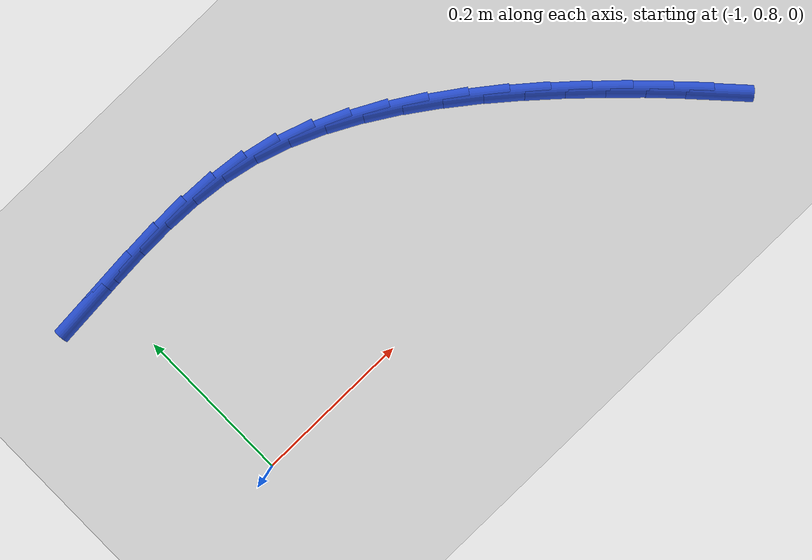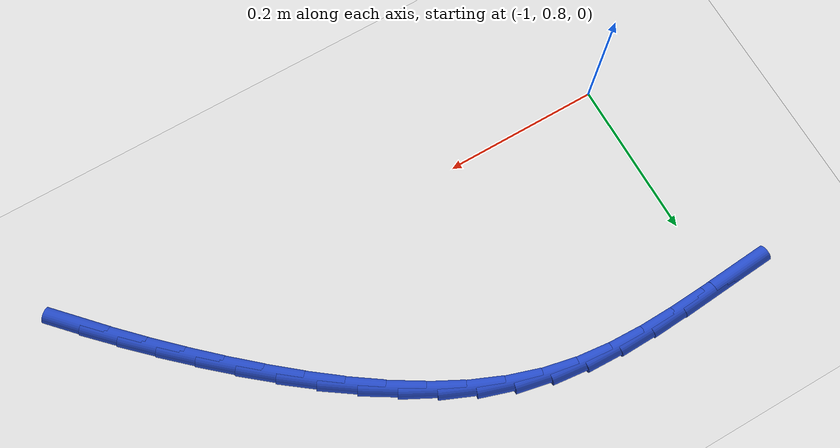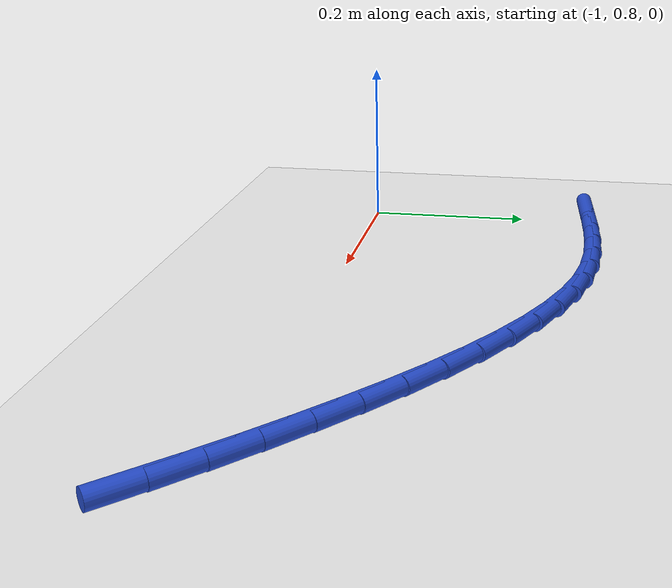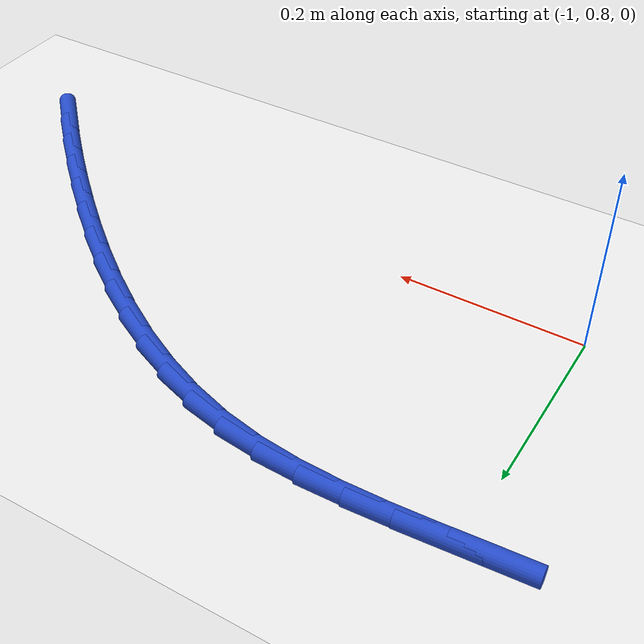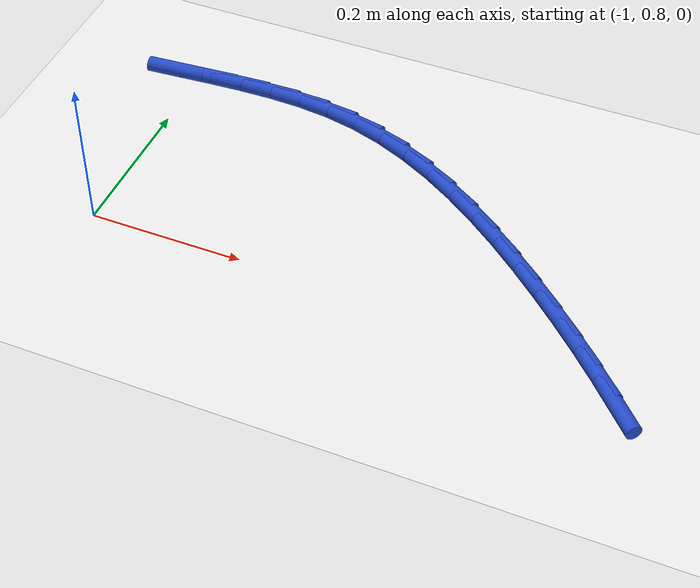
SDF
<sdf version="1.6">
 <world name="default">
  <model name="ground_plane">
   <static>1</static>
   <link name="link">
    <collision name="collision">
     <geometry><plane><normal>0 0 1</normal><size>100 100</size></plane></geometry>
     <surface><friction><ode><mu>100</mu><mu2>50</mu2></ode></friction></surface>
    </collision>
    <visual name="visual">
     <cast_shadows>0</cast_shadows>
     <geometry><plane><normal>0 0 1</normal><size>100 100</size></plane></geometry>
     <material>
      <script><uri>file://media/materials/scripts/gazebo.material</uri><name>Gazebo/WhiteGlow</name></script>
     </material>
    </visual>
   </link>
  </model>
  <model name="line">
   <link name="link_18">
    <pose>-0.3136771158944373 0.7492867287260317 0.01 0 1.57 -0.8182478704940331</pose>
    <collision name="collision">
     <geometry><cylinder><radius>0.01</radius><length>0.08</length></cylinder></geometry>
    </collision>
    <visual name="visual">
     <material>
      <script><name>Gazebo/Blue</name><uri>file://media/materials/scripts/gazebo.material</uri></script>
     </material>
     <geometry><cylinder><radius>0.01</radius><length>0.08</length></cylinder></geometry>
    </visual>
   </link>
   <link name="link_19">
    <pose>-0.3458120315836719 0.7836054112105914 0.01 0 1.57 -0.791452390213166</pose>
    <collision name="collision">
     <geometry><cylinder><radius>0.01</radius><length>0.08</length></cylinder></geometry>
    </collision>
    <visual name="visual">
     <material>
      <script><name>Gazebo/Blue</name><uri>file://media/materials/scripts/gazebo.material</uri></script>
     </material>
     <geometry><cylinder><radius>0.01</radius><length>0.08</length></cylinder></geometry>
    </visual>
   </link>
   <link name="link_20">
    <pose>-0.3790881491728298 0.8172869103513906 0.01 0 1.57 -0.7664967476595134</pose>
    <collision name="collision">
     <geometry><cylinder><radius>0.01</radius><length>0.08</length></cylinder></geometry>
    </collision>
    <visual name="visual">
     <material>
      <script><name>Gazebo/Blue</name><uri>file://media/materials/scripts/gazebo.material</uri></script>
     </material>
     <geometry><cylinder><radius>0.01</radius><length>0.08</length></cylinder></geometry>
    </visual>
   </link>
   <link name="link_21">
    <pose>-0.4134435788887743 0.8503675510492263 0.01 0 1.57 -0.7433139750297793</pose>
    <collision name="collision">
     <geometry><cylinder><radius>0.01</radius><length>0.08</length></cylinder></geometry>
    </collision>
    <visual name="visual">
     <material>
      <script><name>Gazebo/Blue</name><uri>file://media/materials/scripts/gazebo.material</uri></script>
     </material>
     <geometry><cylinder><radius>0.01</radius><length>0.08</length></cylinder></geometry>
    </visual>
   </link>
   <link name="link_22">
    <pose>-0.44881650836748194 0.8828818152418216 0.01 0 1.57 -0.7190530721349292</pose>
    <collision name="collision">
     <geometry><cylinder><radius>0.01</radius><length>0.08</length></cylinder></geometry>
    </collision>
    <visual name="visual">
     <material>
      <script><name>Gazebo/Blue</name><uri>file://media/materials/scripts/gazebo.material</uri></script>
     </material>
     <geometry><cylinder><radius>0.01</radius><length>0.08</length></cylinder></geometry>
    </visual>
   </link>
   <link name="link_23">
    <pose>-0.4851524385801649 0.9146900683290224 0.01 0 1.57 -0.6883678950188451</pose>
    <collision name="collision">
     <geometry><cylinder><radius>0.01</radius><length>0.08</length></cylinder></geometry>
    </collision>
    <visual name="visual">
     <material>
      <script><name>Gazebo/Blue</name><uri>file://media/materials/scripts/gazebo.material</uri></script>
     </material>
     <geometry><cylinder><radius>0.01</radius><length>0.08</length></cylinder></geometry>
    </visual>
   </link>
   <link name="link_24">
    <pose>-0.5224100852822178 0.9453380569496486 0.01 0 1.57 -0.6501098971615135</pose>
    <collision name="collision">
     <geometry><cylinder><radius>0.01</radius><length>0.08</length></cylinder></geometry>
    </collision>
    <visual name="visual">
     <material>
      <script><name>Gazebo/Blue</name><uri>file://media/materials/scripts/gazebo.material</uri></script>
     </material>
     <geometry><cylinder><radius>0.01</radius><length>0.08</length></cylinder></geometry>
    </visual>
   </link>
   <link name="link_25">
    <pose>-0.5605495530582921 0.9743384623716483 0.01 0 1.57 -0.6034325827201155</pose>
    <collision name="collision">
     <geometry><cylinder><radius>0.01</radius><length>0.08</length></cylinder></geometry>
    </collision>
    <visual name="visual">
     <material>
      <script><name>Gazebo/Blue</name><uri>file://media/materials/scripts/gazebo.material</uri></script>
     </material>
     <geometry><cylinder><radius>0.01</radius><length>0.08</length></cylinder></geometry>
    </visual>
   </link>
   <link name="link_26">
    <pose>-0.599530946493039 1.0012039658629688 0.01 0 1.57 -0.5472891287982019</pose>
    <collision name="collision">
     <geometry><cylinder><radius>0.01</radius><length>0.08</length></cylinder></geometry>
    </collision>
    <visual name="visual">
     <material>
      <script><name>Gazebo/Blue</name><uri>file://media/materials/scripts/gazebo.material</uri></script>
     </material>
     <geometry><cylinder><radius>0.01</radius><length>0.08</length></cylinder></geometry>
    </visual>
   </link>
   <link name="link_27">
    <pose>-0.6393143701711105 1.0254472486915585 0.01 0 1.57 -0.48049053275816206</pose>
    <collision name="collision">
     <geometry><cylinder><radius>0.01</radius><length>0.08</length></cylinder></geometry>
    </collision>
    <visual name="visual">
     <material>
      <script><name>Gazebo/Blue</name><uri>file://media/materials/scripts/gazebo.material</uri></script>
     </material>
     <geometry><cylinder><radius>0.01</radius><length>0.08</length></cylinder></geometry>
    </visual>
   </link>
   <link name="link_28">
    <pose>-0.6798599286771576 1.0465809921253642 0.01 0 1.57 -0.401831058567321</pose>
    <collision name="collision">
     <geometry><cylinder><radius>0.01</radius><length>0.08</length></cylinder></geometry>
    </collision>
    <visual name="visual">
     <material>
      <script><name>Gazebo/Blue</name><uri>file://media/materials/scripts/gazebo.material</uri></script>
     </material>
     <geometry><cylinder><radius>0.01</radius><length>0.08</length></cylinder></geometry>
    </visual>
   </link>
   <link name="link_29">
    <pose>-0.7211277265958319 1.064117877432334 0.01 0 1.57 -0.31032261865265476</pose>
    <collision name="collision">
     <geometry><cylinder><radius>0.01</radius><length>0.08</length></cylinder></geometry>
    </collision>
    <visual name="visual">
     <material>
      <script><name>Gazebo/Blue</name><uri>file://media/materials/scripts/gazebo.material</uri></script>
     </material>
     <geometry><cylinder><radius>0.01</radius><length>0.08</length></cylinder></geometry>
    </visual>
   </link>
   <link name="link_30">
    <pose>-0.7630778685117849 1.0775705858804163 0.01 0 1.57 -0.2071887860075463</pose>
    <collision name="collision">
     <geometry><cylinder><radius>0.01</radius><length>0.08</length></cylinder></geometry>
    </collision>
    <visual name="visual">
     <material>
      <script><name>Gazebo/Blue</name><uri>file://media/materials/scripts/gazebo.material</uri></script>
     </material>
     <geometry><cylinder><radius>0.01</radius><length>0.08</length></cylinder></geometry>
    </visual>
   </link>
   <link name="link_31">
    <pose>-0.8056770742396852 1.0865251634206432 0.01 0 1.57 -0.11083185208823877</pose>
    <collision name="collision">
     <geometry><cylinder><radius>0.01</radius><length>0.08</length></cylinder></geometry>
    </collision>
    <visual name="visual">
     <material>
      <script><name>Gazebo/Blue</name><uri>file://media/materials/scripts/gazebo.material</uri></script>
     </material>
     <geometry><cylinder><radius>0.01</radius><length>0.08</length></cylinder></geometry>
    </visual>
   </link>
   <link name="link_32">
    <pose>-0.848961907312422 1.0913422416555325 0.01 0 1.57 -0.034156010957570815</pose>
    <collision name="collision">
     <geometry><cylinder><radius>0.01</radius><length>0.08</length></cylinder></geometry>
    </collision>
    <visual name="visual">
     <material>
      <script><name>Gazebo/Blue</name><uri>file://media/materials/scripts/gazebo.material</uri></script>
     </material>
     <geometry><cylinder><radius>0.01</radius><length>0.08</length></cylinder></geometry>
    </visual>
   </link>
   <link name="link_33">
    <pose>-0.8930108518906228 1.092847363242956 0.01 0 1.57 0.021714615140851948</pose>
    <collision name="collision">
     <geometry><cylinder><radius>0.01</radius><length>0.08</length></cylinder></geometry>
    </collision>
    <visual name="visual">
     <material>
      <script><name>Gazebo/Blue</name><uri>file://media/materials/scripts/gazebo.material</uri></script>
     </material>
     <geometry><cylinder><radius>0.01</radius><length>0.08</length></cylinder></geometry>
    </visual>
   </link>
   <link name="link_34">
    <pose>-0.9379029623874819 1.0918723950953793 0.01 0 1.57 0.057194549323245185</pose>
    <collision name="collision">
     <geometry><cylinder><radius>0.01</radius><length>0.08</length></cylinder></geometry>
    </collision>
    <visual name="visual">
     <material>
      <script><name>Gazebo/Blue</name><uri>file://media/materials/scripts/gazebo.material</uri></script>
     </material>
     <geometry><cylinder><radius>0.01</radius><length>0.08</length></cylinder></geometry>
    </visual>
   </link>
   <link name="link_35">
    <pose>-0.9837172932161931 1.089249204125267 0.01 0 1.57 0.07333832554534546</pose>
    <collision name="collision">
     <geometry><cylinder><radius>0.01</radius><length>0.08</length></cylinder></geometry>
    </collision>
    <visual name="visual">
     <material>
      <script><name>Gazebo/Blue</name><uri>file://media/materials/scripts/gazebo.material</uri></script>
     </material>
     <geometry><cylinder><radius>0.01</radius><length>0.08</length></cylinder></geometry>
    </visual>
   </link>
   <link name="link_36">
    <pose>-1.0305328987899507 1.0858096572450848 0.01 0 1.57 0.07136765697515104</pose>
    <collision name="collision">
     <geometry><cylinder><radius>0.01</radius><length>0.08</length></cylinder></geometry>
    </collision>
    <visual name="visual">
     <material>
      <script><name>Gazebo/Blue</name><uri>file://media/materials/scripts/gazebo.material</uri></script>
     </material>
     <geometry><cylinder><radius>0.01</radius><length>0.08</length></cylinder></geometry>
    </visual>
   </link>
  </model>
 </world>
</sdf>
